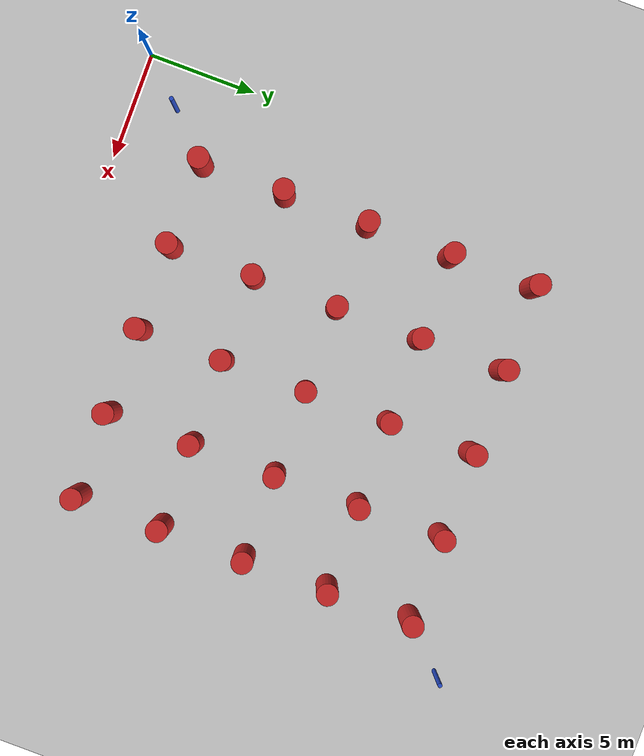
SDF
<sdf version='1.8'>
  <world name='default'>
    <light name='sun' type='directional'>
      <cast_shadows>1</cast_shadows>
      <pose>0 0 10 0 -0 0</pose>
      <diffuse>0.8 0.8 0.8 1</diffuse>
      <specular>0.4 0.4 0.4 1</specular>
      <attenuation>
        <range>1000</range>
        <constant>0.9</constant>
        <linear>0.01</linear>
        <quadratic>0.001</quadratic>
      </attenuation>
      <direction>-0.5 0.1 -0.9</direction>
    </light>
    <model name='ground_plane'>
      <static>1</static>
      <link name='link'>
        <collision name='collision'>
          <geometry>
            <plane>
              <normal>0 0 1</normal>
              <size>100 100</size>
            </plane>
          </geometry>
          <surface>
            <friction>
              <ode>
                <mu>100</mu>
                <mu2>50</mu2>
              </ode>
            </friction>
            <bounce/>
            <contact>
              <ode/>
            </contact>
          </surface>
          <max_contacts>9</max_contacts>
        </collision>
        <visual name='visual'>
          <cast_shadows>0</cast_shadows>
          <geometry>
            <plane>
              <normal>0 0 1</normal>
              <size>100 100</size>
            </plane>
          </geometry>
          <material>
            <script>
              <uri>file://media/materials/scripts/gazebo.material</uri>
              <name>Gazebo/Grey</name>
            </script>
          </material>
        </visual>
        <velocity_decay>
          <linear>0</linear>
          <angular>0</angular>
        </velocity_decay>
        <self_collide>0</self_collide>
        <kinematic>0</kinematic>
        <gravity>1</gravity>
      </link>
    </model>
    <physics type='ode'>
      <max_step_size>0.01</max_step_size>
      <real_time_factor>1</real_time_factor>
      <real_time_update_rate>100</real_time_update_rate>
      <gravity>0 0 -9.8</gravity>
    </physics>
    <scene>
      <ambient>0.8 0.8 0.8 1</ambient>
      <background>0.7 0.7 0.7 1</background>
      <shadows>1</shadows>
    </scene>
    <spherical_coordinates>
      <surface_model>EARTH_WGS84</surface_model>
      <latitude_deg>0</latitude_deg>
      <longitude_deg>0</longitude_deg>
      <elevation>0</elevation>
      <heading_deg>0</heading_deg>
    </spherical_coordinates>
    <model name='cylinder_1'>
      <pose>4 4 1.5 0 -0 0</pose>
      <link name='link'>
        <inertial>
          <mass>1000</mass>
          <inertia>
            <ixx>1000</ixx>
            <ixy>0</ixy>
            <ixz>0</ixz>
            <iyy>1000</iyy>
            <iyz>0</iyz>
            <izz>1000</izz>
          </inertia>
        </inertial>
        <collision name='collision'>
          <geometry>
            <cylinder>
              <radius>0.5</radius>
              <length>3</length>
            </cylinder>
          </geometry>
          <max_contacts>9</max_contacts>
          <surface>
            <bounce/>
            <friction>
              <ode/>
            </friction>
            <contact>
              <ode/>
            </contact>
          </surface>
        </collision>
        <visual name='visual'>
          <geometry>
            <cylinder>
              <radius>0.5</radius>
              <length>3</length>
            </cylinder>
          </geometry>
          <material>
            <script>
              <uri>file://media/materials/scripts/gazebo.material</uri>
              <name>Gazebo/Red</name>
            </script>
          </material>
        </visual>
        <velocity_decay>
          <linear>0</linear>
          <angular>0</angular>
        </velocity_decay>
        <self_collide>0</self_collide>
        <kinematic>0</kinematic>
        <gravity>1</gravity>
      </link>
      <static>1</static>
    </model>
    <model name='cylinder_2'>
      <pose>4 8 1.5 0 -0 0</pose>
      <link name='link'>
        <inertial>
          <mass>1000</mass>
          <inertia>
            <ixx>1000</ixx>
            <ixy>0</ixy>
            <ixz>0</ixz>
            <iyy>1000</iyy>
            <iyz>0</iyz>
            <izz>1000</izz>
          </inertia>
        </inertial>
        <collision name='collision'>
          <geometry>
            <cylinder>
              <radius>0.5</radius>
              <length>3</length>
            </cylinder>
          </geometry>
          <max_contacts>9</max_contacts>
          <surface>
            <bounce/>
            <friction>
              <ode/>
            </friction>
            <contact>
              <ode/>
            </contact>
          </surface>
        </collision>
        <visual name='visual'>
          <geometry>
            <cylinder>
              <radius>0.5</radius>
              <length>3</length>
            </cylinder>
          </geometry>
          <material>
            <script>
              <uri>file://media/materials/scripts/gazebo.material</uri>
              <name>Gazebo/Red</name>
            </script>
          </material>
        </visual>
        <velocity_decay>
          <linear>0</linear>
          <angular>0</angular>
        </velocity_decay>
        <self_collide>0</self_collide>
        <kinematic>0</kinematic>
        <gravity>1</gravity>
      </link>
      <static>1</static>
    </model>
    <model name='cylinder_3'>
      <pose>4 12 1.5 0 -0 0</pose>
      <link name='link'>
        <inertial>
          <mass>1000</mass>
          <inertia>
            <ixx>1000</ixx>
            <ixy>0</ixy>
            <ixz>0</ixz>
            <iyy>1000</iyy>
            <iyz>0</iyz>
            <izz>1000</izz>
          </inertia>
        </inertial>
        <collision name='collision'>
          <geometry>
            <cylinder>
              <radius>0.5</radius>
              <length>3</length>
            </cylinder>
          </geometry>
          <max_contacts>9</max_contacts>
          <surface>
            <bounce/>
            <friction>
              <ode/>
            </friction>
            <contact>
              <ode/>
            </contact>
          </surface>
        </collision>
        <visual name='visual'>
          <geometry>
            <cylinder>
              <radius>0.5</radius>
              <length>3</length>
            </cylinder>
          </geometry>
          <material>
            <script>
              <uri>file://media/materials/scripts/gazebo.material</uri>
              <name>Gazebo/Red</name>
            </script>
          </material>
        </visual>
        <velocity_decay>
          <linear>0</linear>
          <angular>0</angular>
        </velocity_decay>
        <self_collide>0</self_collide>
        <kinematic>0</kinematic>
        <gravity>1</gravity>
      </link>
      <static>1</static>
    </model>
    <model name='cylinder_4'>
      <pose>4 16 1.5 0 -0 0</pose>
      <link name='link'>
        <inertial>
          <mass>1000</mass>
          <inertia>
            <ixx>1000</ixx>
            <ixy>0</ixy>
            <ixz>0</ixz>
            <iyy>1000</iyy>
            <iyz>0</iyz>
            <izz>1000</izz>
          </inertia>
        </inertial>
        <collision name='collision'>
          <geometry>
            <cylinder>
              <radius>0.5</radius>
              <length>3</length>
            </cylinder>
          </geometry>
          <max_contacts>9</max_contacts>
          <surface>
            <bounce/>
            <friction>
              <ode/>
            </friction>
            <contact>
              <ode/>
            </contact>
          </surface>
        </collision>
        <visual name='visual'>
          <geometry>
            <cylinder>
              <radius>0.5</radius>
              <length>3</length>
            </cylinder>
          </geometry>
          <material>
            <script>
              <uri>file://media/materials/scripts/gazebo.material</uri>
              <name>Gazebo/Red</name>
            </script>
          </material>
        </visual>
        <velocity_decay>
          <linear>0</linear>
          <angular>0</angular>
        </velocity_decay>
        <self_collide>0</self_collide>
        <kinematic>0</kinematic>
        <gravity>1</gravity>
      </link>
      <static>1</static>
    </model>
    <model name='cylinder_5'>
      <pose>4 20 1.5 0 -0 0</pose>
      <link name='link'>
        <inertial>
          <mass>1000</mass>
          <inertia>
            <ixx>1000</ixx>
            <ixy>0</ixy>
            <ixz>0</ixz>
            <iyy>1000</iyy>
            <iyz>0</iyz>
            <izz>1000</izz>
          </inertia>
        </inertial>
        <collision name='collision'>
          <geometry>
            <cylinder>
              <radius>0.5</radius>
              <length>3</length>
            </cylinder>
          </geometry>
          <max_contacts>9</max_contacts>
          <surface>
            <bounce/>
            <friction>
              <ode/>
            </friction>
            <contact>
              <ode/>
            </contact>
          </surface>
        </collision>
        <visual name='visual'>
          <geometry>
            <cylinder>
              <radius>0.5</radius>
              <length>3</length>
            </cylinder>
          </geometry>
          <material>
            <script>
              <uri>file://media/materials/scripts/gazebo.material</uri>
              <name>Gazebo/Red</name>
            </script>
          </material>
        </visual>
        <velocity_decay>
          <linear>0</linear>
          <angular>0</angular>
        </velocity_decay>
        <self_collide>0</self_collide>
        <kinematic>0</kinematic>
        <gravity>1</gravity>
      </link>
      <static>1</static>
    </model>
    <model name='cylinder_6'>
      <pose>8 4 1.5 0 -0 0</pose>
      <link name='link'>
        <inertial>
          <mass>1000</mass>
          <inertia>
            <ixx>1000</ixx>
            <ixy>0</ixy>
            <ixz>0</ixz>
            <iyy>1000</iyy>
            <iyz>0</iyz>
            <izz>1000</izz>
          </inertia>
        </inertial>
        <collision name='collision'>
          <geometry>
            <cylinder>
              <radius>0.5</radius>
              <length>3</length>
            </cylinder>
          </geometry>
          <max_contacts>9</max_contacts>
          <surface>
            <bounce/>
            <friction>
              <ode/>
            </friction>
            <contact>
              <ode/>
            </contact>
          </surface>
        </collision>
        <visual name='visual'>
          <geometry>
            <cylinder>
              <radius>0.5</radius>
              <length>3</length>
            </cylinder>
          </geometry>
          <material>
            <script>
              <uri>file://media/materials/scripts/gazebo.material</uri>
              <name>Gazebo/Red</name>
            </script>
          </material>
        </visual>
        <velocity_decay>
          <linear>0</linear>
          <angular>0</angular>
        </velocity_decay>
        <self_collide>0</self_collide>
        <kinematic>0</kinematic>
        <gravity>1</gravity>
      </link>
      <static>1</static>
    </model>
    <model name='cylinder_7'>
      <pose>8 8 1.5 0 -0 0</pose>
      <link name='link'>
        <inertial>
          <mass>1000</mass>
          <inertia>
            <ixx>1000</ixx>
            <ixy>0</ixy>
            <ixz>0</ixz>
            <iyy>1000</iyy>
            <iyz>0</iyz>
            <izz>1000</izz>
          </inertia>
        </inertial>
        <collision name='collision'>
          <geometry>
            <cylinder>
              <radius>0.5</radius>
              <length>3</length>
            </cylinder>
          </geometry>
          <max_contacts>9</max_contacts>
          <surface>
            <bounce/>
            <friction>
              <ode/>
            </friction>
            <contact>
              <ode/>
            </contact>
          </surface>
        </collision>
        <visual name='visual'>
          <geometry>
            <cylinder>
              <radius>0.5</radius>
              <length>3</length>
            </cylinder>
          </geometry>
          <material>
            <script>
              <uri>file://media/materials/scripts/gazebo.material</uri>
              <name>Gazebo/Red</name>
            </script>
          </material>
        </visual>
        <velocity_decay>
          <linear>0</linear>
          <angular>0</angular>
        </velocity_decay>
        <self_collide>0</self_collide>
        <kinematic>0</kinematic>
        <gravity>1</gravity>
      </link>
      <static>1</static>
    </model>
    <model name='cylinder_8'>
      <pose>8 12 1.5 0 -0 0</pose>
      <link name='link'>
        <inertial>
          <mass>1000</mass>
          <inertia>
            <ixx>1000</ixx>
            <ixy>0</ixy>
            <ixz>0</ixz>
            <iyy>1000</iyy>
            <iyz>0</iyz>
            <izz>1000</izz>
          </inertia>
        </inertial>
        <collision name='collision'>
          <geometry>
            <cylinder>
              <radius>0.5</radius>
              <length>3</length>
            </cylinder>
          </geometry>
          <max_contacts>9</max_contacts>
          <surface>
            <bounce/>
            <friction>
              <ode/>
            </friction>
            <contact>
              <ode/>
            </contact>
          </surface>
        </collision>
        <visual name='visual'>
          <geometry>
            <cylinder>
              <radius>0.5</radius>
              <length>3</length>
            </cylinder>
          </geometry>
          <material>
            <script>
              <uri>file://media/materials/scripts/gazebo.material</uri>
              <name>Gazebo/Red</name>
            </script>
          </material>
        </visual>
        <velocity_decay>
          <linear>0</linear>
          <angular>0</angular>
        </velocity_decay>
        <self_collide>0</self_collide>
        <kinematic>0</kinematic>
        <gravity>1</gravity>
      </link>
      <static>1</static>
    </model>
    <model name='cylinder_9'>
      <pose>8 16 1.5 0 -0 0</pose>
      <link name='link'>
        <inertial>
          <mass>1000</mass>
          <inertia>
            <ixx>1000</ixx>
            <ixy>0</ixy>
            <ixz>0</ixz>
            <iyy>1000</iyy>
            <iyz>0</iyz>
            <izz>1000</izz>
          </inertia>
        </inertial>
        <collision name='collision'>
          <geometry>
            <cylinder>
              <radius>0.5</radius>
              <length>3</length>
            </cylinder>
          </geometry>
          <max_contacts>9</max_contacts>
          <surface>
            <bounce/>
            <friction>
              <ode/>
            </friction>
            <contact>
              <ode/>
            </contact>
          </surface>
        </collision>
        <visual name='visual'>
          <geometry>
            <cylinder>
              <radius>0.5</radius>
              <length>3</length>
            </cylinder>
          </geometry>
          <material>
            <script>
              <uri>file://media/materials/scripts/gazebo.material</uri>
              <name>Gazebo/Red</name>
            </script>
          </material>
        </visual>
        <velocity_decay>
          <linear>0</linear>
          <angular>0</angular>
        </velocity_decay>
        <self_collide>0</self_collide>
        <kinematic>0</kinematic>
        <gravity>1</gravity>
      </link>
      <static>1</static>
    </model>
    <model name='cylinder_10'>
      <pose>8 20 1.5 0 -0 0</pose>
      <link name='link'>
        <inertial>
          <mass>1000</mass>
          <inertia>
            <ixx>1000</ixx>
            <ixy>0</ixy>
            <ixz>0</ixz>
            <iyy>1000</iyy>
            <iyz>0</iyz>
            <izz>1000</izz>
          </inertia>
        </inertial>
        <collision name='collision'>
          <geometry>
            <cylinder>
              <radius>0.5</radius>
              <length>3</length>
            </cylinder>
          </geometry>
          <max_contacts>9</max_contacts>
          <surface>
            <bounce/>
            <friction>
              <ode/>
            </friction>
            <contact>
              <ode/>
            </contact>
          </surface>
        </collision>
        <visual name='visual'>
          <geometry>
            <cylinder>
              <radius>0.5</radius>
              <length>3</length>
            </cylinder>
          </geometry>
          <material>
            <script>
              <uri>file://media/materials/scripts/gazebo.material</uri>
              <name>Gazebo/Red</name>
            </script>
          </material>
        </visual>
        <velocity_decay>
          <linear>0</linear>
          <angular>0</angular>
        </velocity_decay>
        <self_collide>0</self_collide>
        <kinematic>0</kinematic>
        <gravity>1</gravity>
      </link>
      <static>1</static>
    </model>
    <model name='cylinder_11'>
      <pose>12 4 1.5 0 -0 0</pose>
      <link name='link'>
        <inertial>
          <mass>1000</mass>
          <inertia>
            <ixx>1000</ixx>
            <ixy>0</ixy>
            <ixz>0</ixz>
            <iyy>1000</iyy>
            <iyz>0</iyz>
            <izz>1000</izz>
          </inertia>
        </inertial>
        <collision name='collision'>
          <geometry>
            <cylinder>
              <radius>0.5</radius>
              <length>3</length>
            </cylinder>
          </geometry>
          <max_contacts>9</max_contacts>
          <surface>
            <bounce/>
            <friction>
              <ode/>
            </friction>
            <contact>
              <ode/>
            </contact>
          </surface>
        </collision>
        <visual name='visual'>
          <geometry>
            <cylinder>
              <radius>0.5</radius>
              <length>3</length>
            </cylinder>
          </geometry>
          <material>
            <script>
              <uri>file://media/materials/scripts/gazebo.material</uri>
              <name>Gazebo/Red</name>
            </script>
          </material>
        </visual>
        <velocity_decay>
          <linear>0</linear>
          <angular>0</angular>
        </velocity_decay>
        <self_collide>0</self_collide>
        <kinematic>0</kinematic>
        <gravity>1</gravity>
      </link>
      <static>1</static>
    </model>
    <model name='cylinder_12'>
      <pose>12 8 1.5 0 -0 0</pose>
      <link name='link'>
        <inertial>
          <mass>1000</mass>
          <inertia>
            <ixx>1000</ixx>
            <ixy>0</ixy>
            <ixz>0</ixz>
            <iyy>1000</iyy>
            <iyz>0</iyz>
            <izz>1000</izz>
          </inertia>
        </inertial>
        <collision name='collision'>
          <geometry>
            <cylinder>
              <radius>0.5</radius>
              <length>3</length>
            </cylinder>
          </geometry>
          <max_contacts>9</max_contacts>
          <surface>
            <bounce/>
            <friction>
              <ode/>
            </friction>
            <contact>
              <ode/>
            </contact>
          </surface>
        </collision>
        <visual name='visual'>
          <geometry>
            <cylinder>
              <radius>0.5</radius>
              <length>3</length>
            </cylinder>
          </geometry>
          <material>
            <script>
              <uri>file://media/materials/scripts/gazebo.material</uri>
              <name>Gazebo/Red</name>
            </script>
          </material>
        </visual>
        <velocity_decay>
          <linear>0</linear>
          <angular>0</angular>
        </velocity_decay>
        <self_collide>0</self_collide>
        <kinematic>0</kinematic>
        <gravity>1</gravity>
      </link>
      <static>1</static>
    </model>
    <model name='cylinder_13'>
      <pose>12 12 1.5 0 -0 0</pose>
      <link name='link'>
        <inertial>
          <mass>1000</mass>
          <inertia>
            <ixx>1000</ixx>
            <ixy>0</ixy>
            <ixz>0</ixz>
            <iyy>1000</iyy>
            <iyz>0</iyz>
            <izz>1000</izz>
          </inertia>
        </inertial>
        <collision name='collision'>
          <geometry>
            <cylinder>
              <radius>0.5</radius>
              <length>3</length>
            </cylinder>
          </geometry>
          <max_contacts>9</max_contacts>
          <surface>
            <bounce/>
            <friction>
              <ode/>
            </friction>
            <contact>
              <ode/>
            </contact>
          </surface>
        </collision>
        <visual name='visual'>
          <geometry>
            <cylinder>
              <radius>0.5</radius>
              <length>3</length>
            </cylinder>
          </geometry>
          <material>
            <script>
              <uri>file://media/materials/scripts/gazebo.material</uri>
              <name>Gazebo/Red</name>
            </script>
          </material>
        </visual>
        <velocity_decay>
          <linear>0</linear>
          <angular>0</angular>
        </velocity_decay>
        <self_collide>0</self_collide>
        <kinematic>0</kinematic>
        <gravity>1</gravity>
      </link>
      <static>1</static>
    </model>
    <model name='cylinder_14'>
      <pose>12 16 1.5 0 -0 0</pose>
      <link name='link'>
        <inertial>
          <mass>1000</mass>
          <inertia>
            <ixx>1000</ixx>
            <ixy>0</ixy>
            <ixz>0</ixz>
            <iyy>1000</iyy>
            <iyz>0</iyz>
            <izz>1000</izz>
          </inertia>
        </inertial>
        <collision name='collision'>
          <geometry>
            <cylinder>
              <radius>0.5</radius>
              <length>3</length>
            </cylinder>
          </geometry>
          <max_contacts>9</max_contacts>
          <surface>
            <bounce/>
            <friction>
              <ode/>
            </friction>
            <contact>
              <ode/>
            </contact>
          </surface>
        </collision>
        <visual name='visual'>
          <geometry>
            <cylinder>
              <radius>0.5</radius>
              <length>3</length>
            </cylinder>
          </geometry>
          <material>
            <script>
              <uri>file://media/materials/scripts/gazebo.material</uri>
              <name>Gazebo/Red</name>
            </script>
          </material>
        </visual>
        <velocity_decay>
          <linear>0</linear>
          <angular>0</angular>
        </velocity_decay>
        <self_collide>0</self_collide>
        <kinematic>0</kinematic>
        <gravity>1</gravity>
      </link>
      <static>1</static>
    </model>
    <model name='cylinder_15'>
      <pose>12 20 1.5 0 -0 0</pose>
      <link name='link'>
        <inertial>
          <mass>1000</mass>
          <inertia>
            <ixx>1000</ixx>
            <ixy>0</ixy>
            <ixz>0</ixz>
            <iyy>1000</iyy>
            <iyz>0</iyz>
            <izz>1000</izz>
          </inertia>
        </inertial>
        <collision name='collision'>
          <geometry>
            <cylinder>
              <radius>0.5</radius>
              <length>3</length>
            </cylinder>
          </geometry>
          <max_contacts>9</max_contacts>
          <surface>
            <bounce/>
            <friction>
              <ode/>
            </friction>
            <contact>
              <ode/>
            </contact>
          </surface>
        </collision>
        <visual name='visual'>
          <geometry>
            <cylinder>
              <radius>0.5</radius>
              <length>3</length>
            </cylinder>
          </geometry>
          <material>
            <script>
              <uri>file://media/materials/scripts/gazebo.material</uri>
              <name>Gazebo/Red</name>
            </script>
          </material>
        </visual>
        <velocity_decay>
          <linear>0</linear>
          <angular>0</angular>
        </velocity_decay>
        <self_collide>0</self_collide>
        <kinematic>0</kinematic>
        <gravity>1</gravity>
      </link>
      <static>1</static>
    </model>
    <model name='cylinder_16'>
      <pose>16 4 1.5 0 -0 0</pose>
      <link name='link'>
        <inertial>
          <mass>1000</mass>
          <inertia>
            <ixx>1000</ixx>
            <ixy>0</ixy>
            <ixz>0</ixz>
            <iyy>1000</iyy>
            <iyz>0</iyz>
            <izz>1000</izz>
          </inertia>
        </inertial>
        <collision name='collision'>
          <geometry>
            <cylinder>
              <radius>0.5</radius>
              <length>3</length>
            </cylinder>
          </geometry>
          <max_contacts>9</max_contacts>
          <surface>
            <bounce/>
            <friction>
              <ode/>
            </friction>
            <contact>
              <ode/>
            </contact>
          </surface>
        </collision>
        <visual name='visual'>
          <geometry>
            <cylinder>
              <radius>0.5</radius>
              <length>3</length>
            </cylinder>
          </geometry>
          <material>
            <script>
              <uri>file://media/materials/scripts/gazebo.material</uri>
              <name>Gazebo/Red</name>
            </script>
          </material>
        </visual>
        <velocity_decay>
          <linear>0</linear>
          <angular>0</angular>
        </velocity_decay>
        <self_collide>0</self_collide>
        <kinematic>0</kinematic>
        <gravity>1</gravity>
      </link>
      <static>1</static>
    </model>
    <model name='cylinder_17'>
      <pose>16 8 1.5 0 -0 0</pose>
      <link name='link'>
        <inertial>
          <mass>1000</mass>
          <inertia>
            <ixx>1000</ixx>
            <ixy>0</ixy>
            <ixz>0</ixz>
            <iyy>1000</iyy>
            <iyz>0</iyz>
            <izz>1000</izz>
          </inertia>
        </inertial>
        <collision name='collision'>
          <geometry>
            <cylinder>
              <radius>0.5</radius>
              <length>3</length>
            </cylinder>
          </geometry>
          <max_contacts>9</max_contacts>
          <surface>
            <bounce/>
            <friction>
              <ode/>
            </friction>
            <contact>
              <ode/>
            </contact>
          </surface>
        </collision>
        <visual name='visual'>
          <geometry>
            <cylinder>
              <radius>0.5</radius>
              <length>3</length>
            </cylinder>
          </geometry>
          <material>
            <script>
              <uri>file://media/materials/scripts/gazebo.material</uri>
              <name>Gazebo/Red</name>
            </script>
          </material>
        </visual>
        <velocity_decay>
          <linear>0</linear>
          <angular>0</angular>
        </velocity_decay>
        <self_collide>0</self_collide>
        <kinematic>0</kinematic>
        <gravity>1</gravity>
      </link>
      <static>1</static>
    </model>
    <model name='cylinder_18'>
      <pose>16 12 1.5 0 -0 0</pose>
      <link name='link'>
        <inertial>
          <mass>1000</mass>
          <inertia>
            <ixx>1000</ixx>
            <ixy>0</ixy>
            <ixz>0</ixz>
            <iyy>1000</iyy>
            <iyz>0</iyz>
            <izz>1000</izz>
          </inertia>
        </inertial>
        <collision name='collision'>
          <geometry>
            <cylinder>
              <radius>0.5</radius>
              <length>3</length>
            </cylinder>
          </geometry>
          <max_contacts>9</max_contacts>
          <surface>
            <bounce/>
            <friction>
              <ode/>
            </friction>
            <contact>
              <ode/>
            </contact>
          </surface>
        </collision>
        <visual name='visual'>
          <geometry>
            <cylinder>
              <radius>0.5</radius>
              <length>3</length>
            </cylinder>
          </geometry>
          <material>
            <script>
              <uri>file://media/materials/scripts/gazebo.material</uri>
              <name>Gazebo/Red</name>
            </script>
          </material>
        </visual>
        <velocity_decay>
          <linear>0</linear>
          <angular>0</angular>
        </velocity_decay>
        <self_collide>0</self_collide>
        <kinematic>0</kinematic>
        <gravity>1</gravity>
      </link>
      <static>1</static>
    </model>
    <model name='cylinder_19'>
      <pose>16 16 1.5 0 -0 0</pose>
      <link name='link'>
        <inertial>
          <mass>1000</mass>
          <inertia>
            <ixx>1000</ixx>
            <ixy>0</ixy>
            <ixz>0</ixz>
            <iyy>1000</iyy>
            <iyz>0</iyz>
            <izz>1000</izz>
          </inertia>
        </inertial>
        <collision name='collision'>
          <geometry>
            <cylinder>
              <radius>0.5</radius>
              <length>3</length>
            </cylinder>
          </geometry>
          <max_contacts>9</max_contacts>
          <surface>
            <bounce/>
            <friction>
              <ode/>
            </friction>
            <contact>
              <ode/>
            </contact>
          </surface>
        </collision>
        <visual name='visual'>
          <geometry>
            <cylinder>
              <radius>0.5</radius>
              <length>3</length>
            </cylinder>
          </geometry>
          <material>
            <script>
              <uri>file://media/materials/scripts/gazebo.material</uri>
              <name>Gazebo/Red</name>
            </script>
          </material>
        </visual>
        <velocity_decay>
          <linear>0</linear>
          <angular>0</angular>
        </velocity_decay>
        <self_collide>0</self_collide>
        <kinematic>0</kinematic>
        <gravity>1</gravity>
      </link>
      <static>1</static>
    </model>
    <model name='cylinder_20'>
      <pose>16 20 1.5 0 -0 0</pose>
      <link name='link'>
        <inertial>
          <mass>1000</mass>
          <inertia>
            <ixx>1000</ixx>
            <ixy>0</ixy>
            <ixz>0</ixz>
            <iyy>1000</iyy>
            <iyz>0</iyz>
            <izz>1000</izz>
          </inertia>
        </inertial>
        <collision name='collision'>
          <geometry>
            <cylinder>
              <radius>0.5</radius>
              <length>3</length>
            </cylinder>
          </geometry>
          <max_contacts>9</max_contacts>
          <surface>
            <bounce/>
            <friction>
              <ode/>
            </friction>
            <contact>
              <ode/>
            </contact>
          </surface>
        </collision>
        <visual name='visual'>
          <geometry>
            <cylinder>
              <radius>0.5</radius>
              <length>3</length>
            </cylinder>
          </geometry>
          <material>
            <script>
              <uri>file://media/materials/scripts/gazebo.material</uri>
              <name>Gazebo/Red</name>
            </script>
          </material>
        </visual>
        <velocity_decay>
          <linear>0</linear>
          <angular>0</angular>
        </velocity_decay>
        <self_collide>0</self_collide>
        <kinematic>0</kinematic>
        <gravity>1</gravity>
      </link>
      <static>1</static>
    </model>
    <model name='cylinder_21'>
      <pose>20 4 1.5 0 -0 0</pose>
      <link name='link'>
        <inertial>
          <mass>1000</mass>
          <inertia>
            <ixx>1000</ixx>
            <ixy>0</ixy>
            <ixz>0</ixz>
            <iyy>1000</iyy>
            <iyz>0</iyz>
            <izz>1000</izz>
          </inertia>
        </inertial>
        <collision name='collision'>
          <geometry>
            <cylinder>
              <radius>0.5</radius>
              <length>3</length>
            </cylinder>
          </geometry>
          <max_contacts>9</max_contacts>
          <surface>
            <bounce/>
            <friction>
              <ode/>
            </friction>
            <contact>
              <ode/>
            </contact>
          </surface>
        </collision>
        <visual name='visual'>
          <geometry>
            <cylinder>
              <radius>0.5</radius>
              <length>3</length>
            </cylinder>
          </geometry>
          <material>
            <script>
              <uri>file://media/materials/scripts/gazebo.material</uri>
              <name>Gazebo/Red</name>
            </script>
          </material>
        </visual>
        <velocity_decay>
          <linear>0</linear>
          <angular>0</angular>
        </velocity_decay>
        <self_collide>0</self_collide>
        <kinematic>0</kinematic>
        <gravity>1</gravity>
      </link>
      <static>1</static>
    </model>
    <model name='cylinder_22'>
      <pose>20 8 1.5 0 -0 0</pose>
      <link name='link'>
        <inertial>
          <mass>1000</mass>
          <inertia>
            <ixx>1000</ixx>
            <ixy>0</ixy>
            <ixz>0</ixz>
            <iyy>1000</iyy>
            <iyz>0</iyz>
            <izz>1000</izz>
          </inertia>
        </inertial>
        <collision name='collision'>
          <geometry>
            <cylinder>
              <radius>0.5</radius>
              <length>3</length>
            </cylinder>
          </geometry>
          <max_contacts>9</max_contacts>
          <surface>
            <bounce/>
            <friction>
              <ode/>
            </friction>
            <contact>
              <ode/>
            </contact>
          </surface>
        </collision>
        <visual name='visual'>
          <geometry>
            <cylinder>
              <radius>0.5</radius>
              <length>3</length>
            </cylinder>
          </geometry>
          <material>
            <script>
              <uri>file://media/materials/scripts/gazebo.material</uri>
              <name>Gazebo/Red</name>
            </script>
          </material>
        </visual>
        <velocity_decay>
          <linear>0</linear>
          <angular>0</angular>
        </velocity_decay>
        <self_collide>0</self_collide>
        <kinematic>0</kinematic>
        <gravity>1</gravity>
      </link>
      <static>1</static>
    </model>
    <model name='cylinder_23'>
      <pose>20 12 1.5 0 -0 0</pose>
      <link name='link'>
        <inertial>
          <mass>1000</mass>
          <inertia>
            <ixx>1000</ixx>
            <ixy>0</ixy>
            <ixz>0</ixz>
            <iyy>1000</iyy>
            <iyz>0</iyz>
            <izz>1000</izz>
          </inertia>
        </inertial>
        <collision name='collision'>
          <geometry>
            <cylinder>
              <radius>0.5</radius>
              <length>3</length>
            </cylinder>
          </geometry>
          <max_contacts>9</max_contacts>
          <surface>
            <bounce/>
            <friction>
              <ode/>
            </friction>
            <contact>
              <ode/>
            </contact>
          </surface>
        </collision>
        <visual name='visual'>
          <geometry>
            <cylinder>
              <radius>0.5</radius>
              <length>3</length>
            </cylinder>
          </geometry>
          <material>
            <script>
              <uri>file://media/materials/scripts/gazebo.material</uri>
              <name>Gazebo/Red</name>
            </script>
          </material>
        </visual>
        <velocity_decay>
          <linear>0</linear>
          <angular>0</angular>
        </velocity_decay>
        <self_collide>0</self_collide>
        <kinematic>0</kinematic>
        <gravity>1</gravity>
      </link>
      <static>1</static>
    </model>
    <model name='cylinder_24'>
      <pose>20 16 1.5 0 -0 0</pose>
      <link name='link'>
        <inertial>
          <mass>1000</mass>
          <inertia>
            <ixx>1000</ixx>
            <ixy>0</ixy>
            <ixz>0</ixz>
            <iyy>1000</iyy>
            <iyz>0</iyz>
            <izz>1000</izz>
          </inertia>
        </inertial>
        <collision name='collision'>
          <geometry>
            <cylinder>
              <radius>0.5</radius>
              <length>3</length>
            </cylinder>
          </geometry>
          <max_contacts>9</max_contacts>
          <surface>
            <bounce/>
            <friction>
              <ode/>
            </friction>
            <contact>
              <ode/>
            </contact>
          </surface>
        </collision>
        <visual name='visual'>
          <geometry>
            <cylinder>
              <radius>0.5</radius>
              <length>3</length>
            </cylinder>
          </geometry>
          <material>
            <script>
              <uri>file://media/materials/scripts/gazebo.material</uri>
              <name>Gazebo/Red</name>
            </script>
          </material>
        </visual>
        <velocity_decay>
          <linear>0</linear>
          <angular>0</angular>
        </velocity_decay>
        <self_collide>0</self_collide>
        <kinematic>0</kinematic>
        <gravity>1</gravity>
      </link>
      <static>1</static>
    </model>
    <model name='cylinder_24'>
      <pose>20 20 1.5 0 -0 0</pose>
      <link name='link'>
        <inertial>
          <mass>1000</mass>
          <inertia>
            <ixx>1000</ixx>
            <ixy>0</ixy>
            <ixz>0</ixz>
            <iyy>1000</iyy>
            <iyz>0</iyz>
            <izz>1000</izz>
          </inertia>
        </inertial>
        <collision name='collision'>
          <geometry>
            <cylinder>
              <radius>0.5</radius>
              <length>3</length>
            </cylinder>
          </geometry>
          <max_contacts>9</max_contacts>
          <surface>
            <bounce/>
            <friction>
              <ode/>
            </friction>
            <contact>
              <ode/>
            </contact>
          </surface>
        </collision>
        <visual name='visual'>
          <geometry>
            <cylinder>
              <radius>0.5</radius>
              <length>3</length>
            </cylinder>
          </geometry>
          <material>
            <script>
              <uri>file://media/materials/scripts/gazebo.material</uri>
              <name>Gazebo/Red</name>
            </script>
          </material>
        </visual>
        <velocity_decay>
          <linear>0</linear>
          <angular>0</angular>
        </velocity_decay>
        <self_collide>0</self_collide>
        <kinematic>0</kinematic>
        <gravity>1</gravity>
      </link>
      <static>1</static>
    </model>
    <model name='start'>
      <pose>2 2 1.5 0 -0 0</pose>
      <link name='link'>
        <inertial>
          <mass>1000</mass>
          <inertia>
            <ixx>1000</ixx>
            <ixy>0</ixy>
            <ixz>0</ixz>
            <iyy>1000</iyy>
            <iyz>0</iyz>
            <izz>1000</izz>
          </inertia>
        </inertial>
        <visual name='visual'>
          <geometry>
            <cylinder>
              <radius>0.1</radius>
              <length>3</length>
            </cylinder>
          </geometry>
          <material>
            <script>
              <uri>file://media/materials/scripts/gazebo.material</uri>
              <name>Gazebo/Blue</name>
            </script>
          </material>
        </visual>
        <velocity_decay>
          <linear>0</linear>
          <angular>0</angular>
        </velocity_decay>
        <self_collide>0</self_collide>
        <kinematic>0</kinematic>
        <gravity>1</gravity>
      </link>
      <static>1</static>
    </model>
    <model name='start'>
      <pose>22 22 1.5 0 -0 0</pose>
      <link name='link'>
        <inertial>
          <mass>1000</mass>
          <inertia>
            <ixx>1000</ixx>
            <ixy>0</ixy>
            <ixz>0</ixz>
            <iyy>1000</iyy>
            <iyz>0</iyz>
            <izz>1000</izz>
          </inertia>
        </inertial>
        <visual name='visual'>
          <geometry>
            <cylinder>
              <radius>0.1</radius>
              <length>3</length>
            </cylinder>
          </geometry>
          <material>
            <script>
              <uri>file://media/materials/scripts/gazebo.material</uri>
              <name>Gazebo/Blue</name>
            </script>
          </material>
        </visual>
        <velocity_decay>
          <linear>0</linear>
          <angular>0</angular>
        </velocity_decay>
        <self_collide>0</self_collide>
        <kinematic>0</kinematic>
        <gravity>1</gravity>
      </link>
      <static>1</static>
    </model>
    <gui fullscreen='0'>
      <camera name='user_camera'>
        <pose>26.5424 -10.7085 28.7054 0 0.865796 2.096</pose>
        <view_controller>orbit</view_controller>
      </camera>
    </gui>
  </world>
</sdf>
